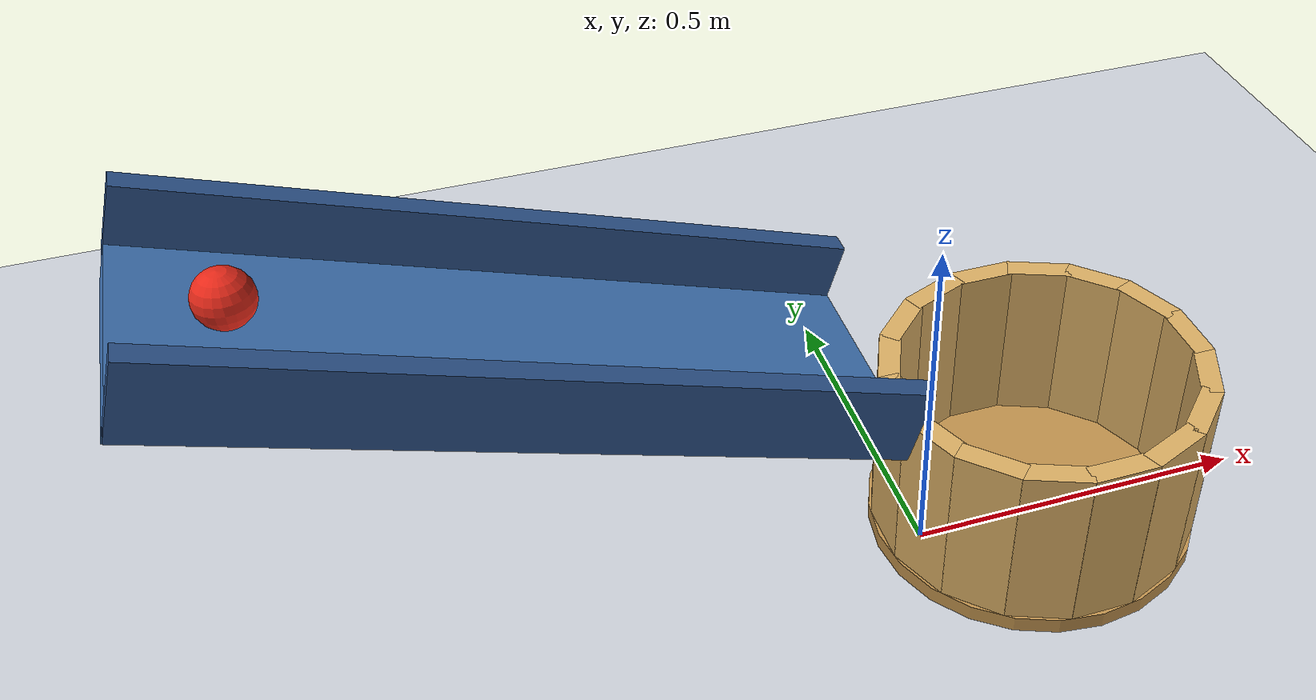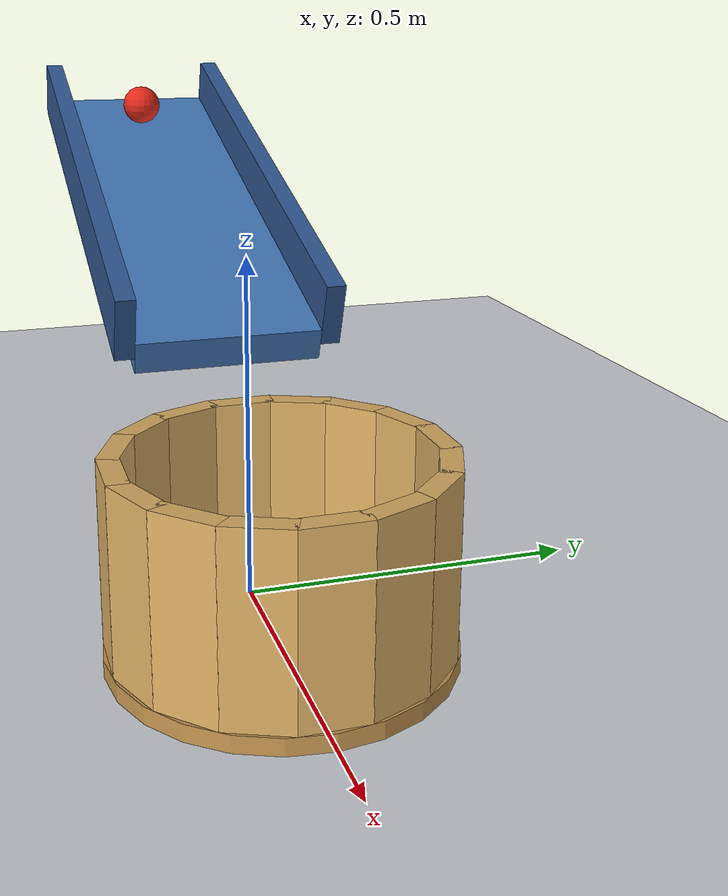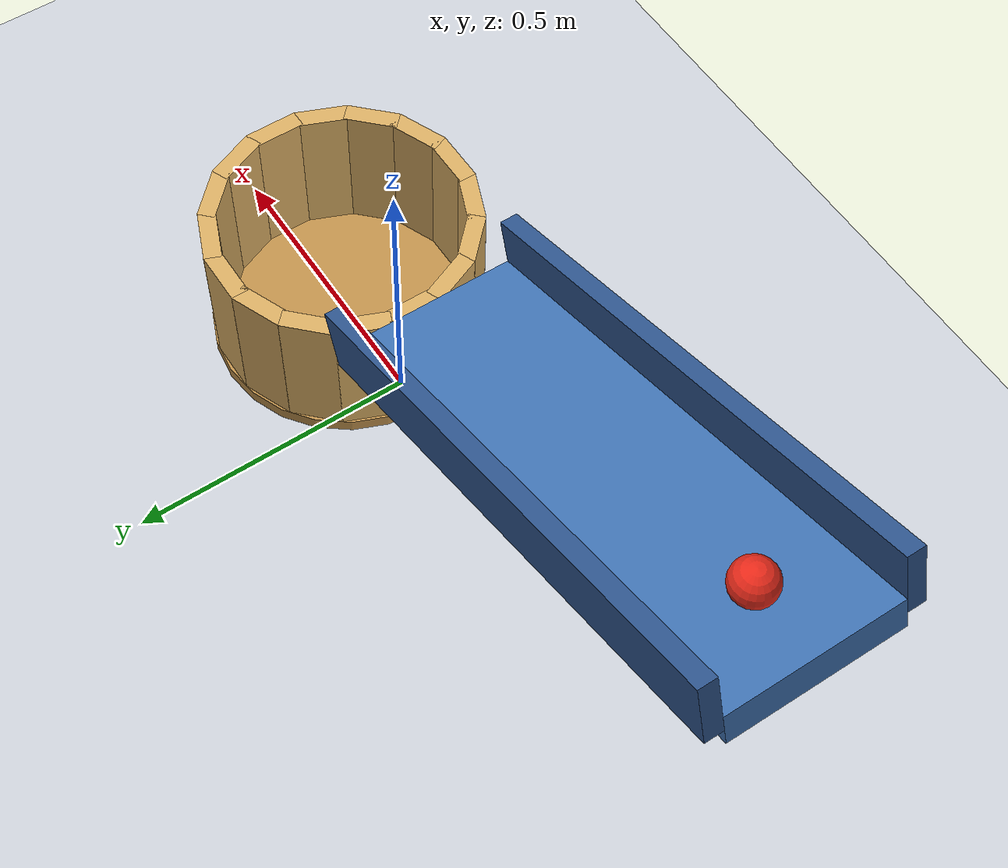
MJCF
<mujoco model="ball_ramp_cup">
  <compiler angle="degree" autolimits="true"/>
  <option timestep="0.002" gravity="0 0 -9.81" integrator="implicitfast" cone="elliptic" iterations="80"/>
  <size nconmax="200" njmax="1000"/>
  <visual>
    <global azimuth="120" elevation="-25"/>
  </visual>
  <statistic center="-0.3 0 0.3" extent="1.5"/>

  <worldbody>
    <light name="overhead" pos="-0.3 -1 2.5" dir="0 0 -1" diffuse="0.9 0.9 0.9"/>
    <geom name="floor" type="plane" pos="0 0 0" size="2 2 0.1" friction="0.9 0.02 0.008" condim="6" rgba="0.8 0.82 0.85 1"/>

    <body name="ramp" pos="-0.525 0 0.5" euler="0 18.232 0">
      <geom name="ramp_surface" type="box" pos="0 0 -0.025" size="0.447465 0.14 0.025" friction="0.8 0.005 0.0003" condim="6" solref="0.012 1" rgba="0.25 0.45 0.7 1"/>
      <geom name="ramp_left_rail" type="box" pos="0 0.155 0.025" size="0.447465 0.015 0.05" friction="0.8 0.005 0.0003" condim="6" rgba="0.18 0.33 0.55 1"/>
      <geom name="ramp_right_rail" type="box" pos="0 -0.155 0.025" size="0.447465 0.015 0.05" friction="0.8 0.005 0.0003" condim="6" rgba="0.18 0.33 0.55 1"/>
    </body>

    <body name="cup" pos="0.17 0 0">
      <geom name="cup_base" type="cylinder" pos="0 0 0.012" size="0.236 0.012" friction="0.8 0.02 0.008" condim="6" solref="0.012 1" rgba="0.75 0.57 0.3 1"/>
      <geom name="cup_wall_00" type="box" pos="0.215 0 0.152" euler="0 0 0" size="0.015 0.046 0.128" friction="0.8 0.02 0.008" condim="6" solref="0.012 1" rgba="0.85 0.68 0.39 1"/>
      <geom name="cup_wall_01" type="box" pos="0.198634 0.082277 0.152" euler="0 0 22.5" size="0.015 0.046 0.128" friction="0.8 0.02 0.008" condim="6" solref="0.012 1" rgba="0.85 0.68 0.39 1"/>
      <geom name="cup_wall_02" type="box" pos="0.152028 0.152028 0.152" euler="0 0 45" size="0.015 0.046 0.128" friction="0.8 0.02 0.008" condim="6" solref="0.012 1" rgba="0.85 0.68 0.39 1"/>
      <geom name="cup_wall_03" type="box" pos="0.082277 0.198634 0.152" euler="0 0 67.5" size="0.015 0.046 0.128" friction="0.8 0.02 0.008" condim="6" solref="0.012 1" rgba="0.85 0.68 0.39 1"/>
      <geom name="cup_wall_04" type="box" pos="0 0.215 0.152" euler="0 0 90" size="0.015 0.046 0.128" friction="0.8 0.02 0.008" condim="6" solref="0.012 1" rgba="0.85 0.68 0.39 1"/>
      <geom name="cup_wall_05" type="box" pos="-0.082277 0.198634 0.152" euler="0 0 112.5" size="0.015 0.046 0.128" friction="0.8 0.02 0.008" condim="6" solref="0.012 1" rgba="0.85 0.68 0.39 1"/>
      <geom name="cup_wall_06" type="box" pos="-0.152028 0.152028 0.152" euler="0 0 135" size="0.015 0.046 0.128" friction="0.8 0.02 0.008" condim="6" solref="0.012 1" rgba="0.85 0.68 0.39 1"/>
      <geom name="cup_wall_07" type="box" pos="-0.198634 0.082277 0.152" euler="0 0 157.5" size="0.015 0.046 0.128" friction="0.8 0.02 0.008" condim="6" solref="0.012 1" rgba="0.85 0.68 0.39 1"/>
      <geom name="cup_wall_08" type="box" pos="-0.215 0 0.152" euler="0 0 180" size="0.015 0.046 0.128" friction="0.8 0.02 0.008" condim="6" solref="0.012 1" rgba="0.85 0.68 0.39 1"/>
      <geom name="cup_wall_09" type="box" pos="-0.198634 -0.082277 0.152" euler="0 0 202.5" size="0.015 0.046 0.128" friction="0.8 0.02 0.008" condim="6" solref="0.012 1" rgba="0.85 0.68 0.39 1"/>
      <geom name="cup_wall_10" type="box" pos="-0.152028 -0.152028 0.152" euler="0 0 225" size="0.015 0.046 0.128" friction="0.8 0.02 0.008" condim="6" solref="0.012 1" rgba="0.85 0.68 0.39 1"/>
      <geom name="cup_wall_11" type="box" pos="-0.082277 -0.198634 0.152" euler="0 0 247.5" size="0.015 0.046 0.128" friction="0.8 0.02 0.008" condim="6" solref="0.012 1" rgba="0.85 0.68 0.39 1"/>
      <geom name="cup_wall_12" type="box" pos="0 -0.215 0.152" euler="0 0 270" size="0.015 0.046 0.128" friction="0.8 0.02 0.008" condim="6" solref="0.012 1" rgba="0.85 0.68 0.39 1"/>
      <geom name="cup_wall_13" type="box" pos="0.082277 -0.198634 0.152" euler="0 0 292.5" size="0.015 0.046 0.128" friction="0.8 0.02 0.008" condim="6" solref="0.012 1" rgba="0.85 0.68 0.39 1"/>
      <geom name="cup_wall_14" type="box" pos="0.152028 -0.152028 0.152" euler="0 0 315" size="0.015 0.046 0.128" friction="0.8 0.02 0.008" condim="6" solref="0.012 1" rgba="0.85 0.68 0.39 1"/>
      <geom name="cup_wall_15" type="box" pos="0.198634 -0.082277 0.152" euler="0 0 337.5" size="0.015 0.046 0.128" friction="0.8 0.02 0.008" condim="6" solref="0.012 1" rgba="0.85 0.68 0.39 1"/>
    </body>

    <body name="ball" pos="-0.83 0 0.638">
      <freejoint/>
      <geom name="ball" type="sphere" size="0.035" mass="0.06" friction="0.8 0.005 0.0003" condim="6" solref="0.012 1" rgba="0.9 0.16 0.1 1"/>
    </body>
  </worldbody>

  <keyframe>
    <key name="start" qpos="-0.83 0 0.638 1 0 0 0" qvel="0 0 0 0 0 0"/>
  </keyframe>
</mujoco>
